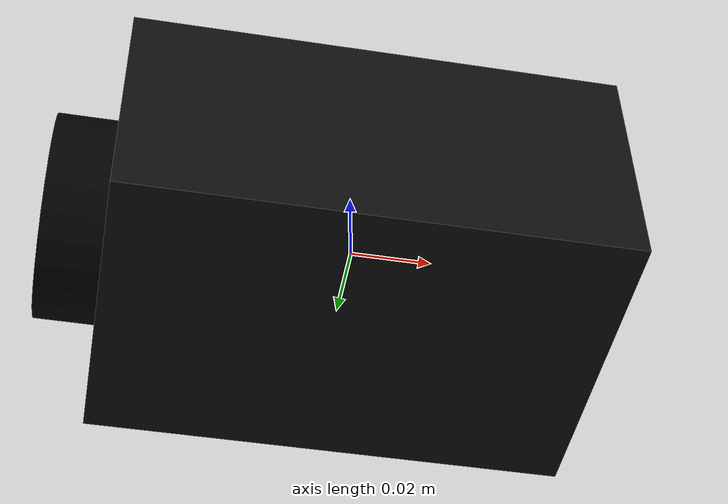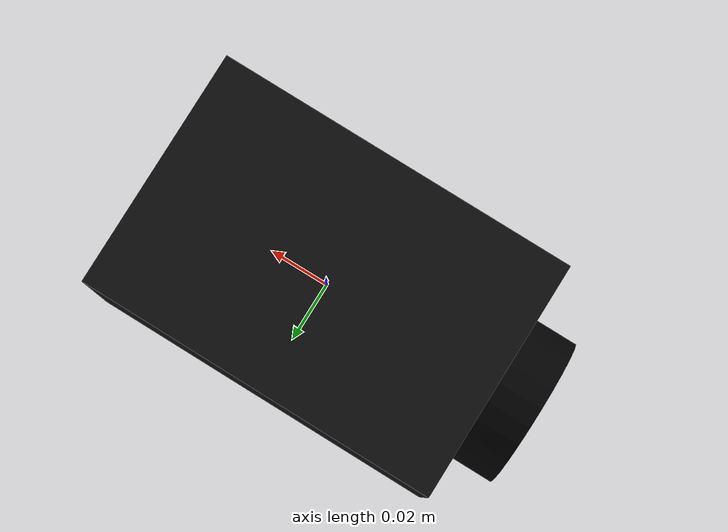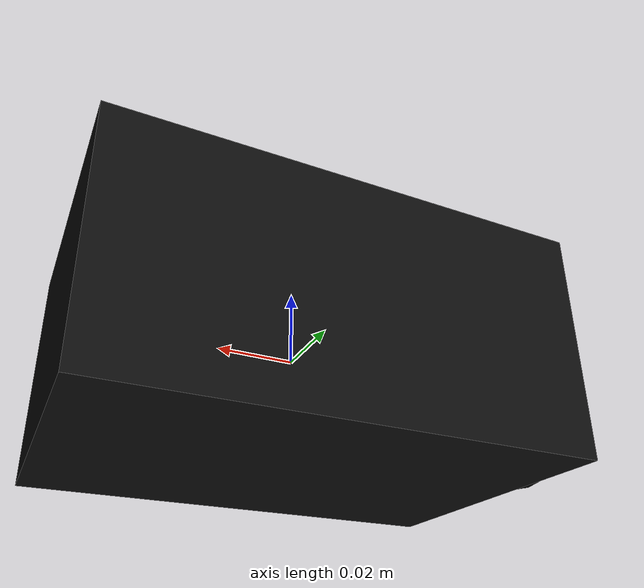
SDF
<?xml version="1.0" ?>
<sdf version="1.9">
  <model name="fixed_rgbd_camera">
    <static>true</static>

    <link name="camera_link">

      <visual name="camera_body">
        <pose>0 0 0 0 0 0</pose>
        <geometry>
          <box>
            <size>0.12 0.08 0.06</size>
          </box>
        </geometry>
        <material>
          <ambient>0.05 0.05 0.05 1</ambient>
          <diffuse>0.05 0.05 0.05 1</diffuse>
        </material>
      </visual>

      <visual name="lens">
        <pose>-0.065 0 0 0 1.5708 0</pose>
        <geometry>
          <cylinder>
            <radius>0.025</radius>
            <length>0.02</length>
          </cylinder>
        </geometry>
        <material>
          <ambient>0.0 0.0 0.0 1</ambient>
          <diffuse>0.0 0.0 0.0 1</diffuse>
        </material>
      </visual>

      <sensor name="rgb_camera" type="camera">
        <always_on>true</always_on>
        <update_rate>30</update_rate>
        <topic>/camera/image</topic>

        <camera>
          <horizontal_fov>1.047</horizontal_fov>
          <image>
            <width>640</width>
            <height>480</height>
            <format>R8G8B8</format>
          </image>
          <clip>
            <near>0.1</near>
            <far>10.0</far>
          </clip>
        </camera>
      </sensor>

      <sensor name="depth_camera" type="depth">
        <always_on>true</always_on>
        <update_rate>30</update_rate>
        <topic>/camera/depth_image</topic>

        <camera>
          <horizontal_fov>1.047</horizontal_fov>
          <image>
            <width>640</width>
            <height>480</height>
            <format>R_FLOAT32</format>
          </image>
          <clip>
            <near>0.1</near>
            <far>10.0</far>
          </clip>
        </camera>
      </sensor>

    </link>
  </model>
</sdf>
